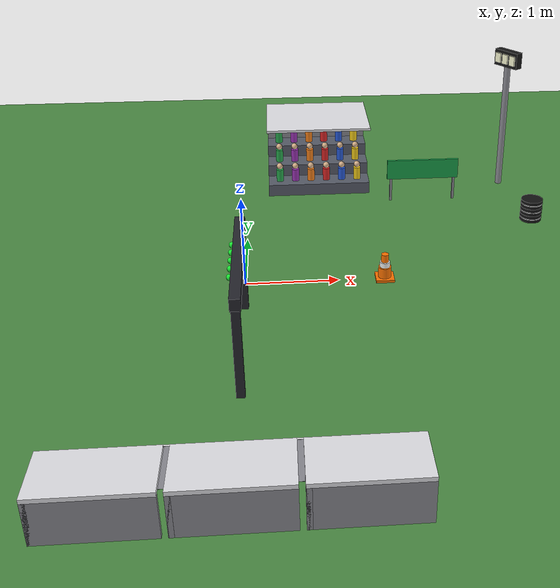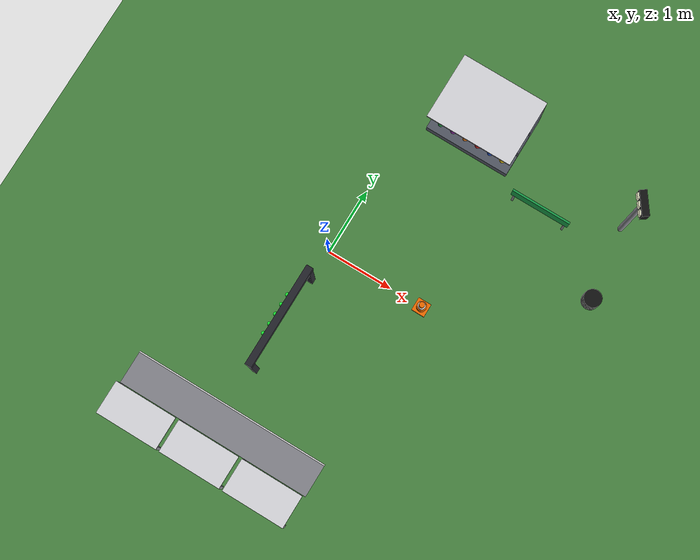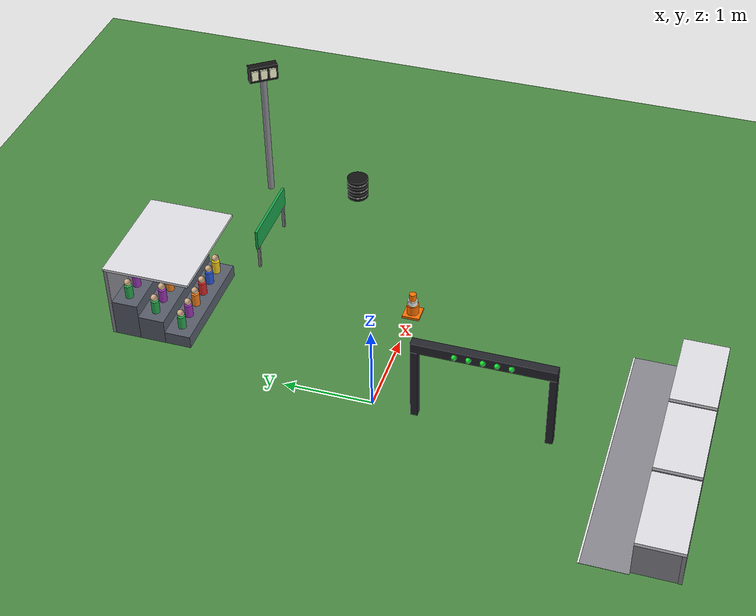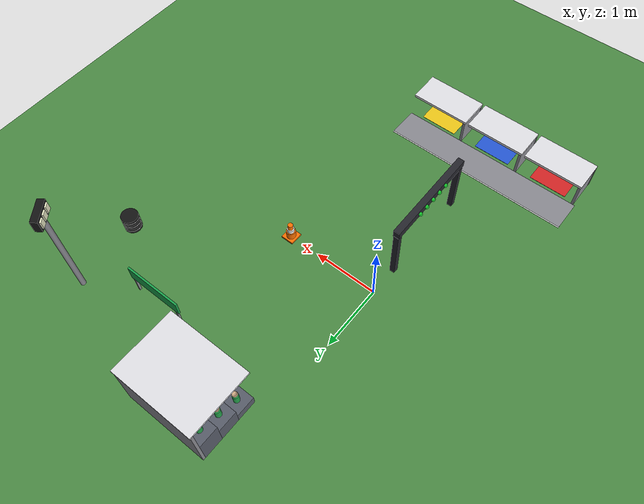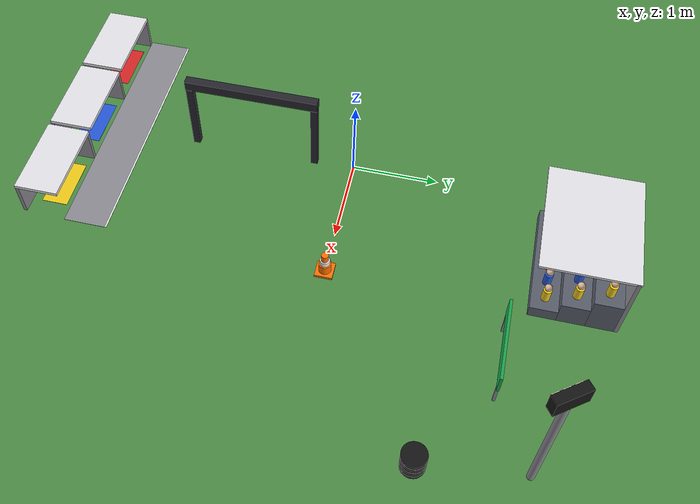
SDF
<sdf version="1.6">
 <world name="apex_circuit">
  <model name="ground_plane">
   <static>true</static>
   <link name="link">
    <collision name="collision">
     <geometry><plane><normal>0 0 1</normal><size>40 40</size></plane></geometry>
     <surface><friction><ode><mu>100</mu><mu2>50</mu2></ode></friction></surface>
    </collision>
    <visual name="visual">
     <geometry><plane><normal>0 0 1</normal><size>40 40</size></plane></geometry>
     <material><ambient>0.3 0.55 0.27 1</ambient><diffuse>0.3 0.55 0.27 1</diffuse></material>
    </visual>
   </link>
  </model>
  <model name="start_finish_gantry">
   <static>true</static>
   <link name="link">
    <visual name="post_out_v">
     <pose>0.0000 -1.9300 0.4500 0 0 0.0000</pose>
     <geometry><box><size>0.0800 0.0800 0.9000</size></box></geometry>
     <material><ambient>0.15 0.15 0.18 1</ambient><diffuse>0.15 0.15 0.18 1</diffuse></material>
    </visual>
    <collision name="post_out_c">
     <pose>0.0000 -1.9300 0.4500 0 0 0.0000</pose>
     <geometry><box><size>0.0800 0.0800 0.9000</size></box></geometry>
    </collision>
    <visual name="post_in_v">
     <pose>0.0000 -0.4700 0.4500 0 0 0.0000</pose>
     <geometry><box><size>0.0800 0.0800 0.9000</size></box></geometry>
     <material><ambient>0.15 0.15 0.18 1</ambient><diffuse>0.15 0.15 0.18 1</diffuse></material>
    </visual>
    <collision name="post_in_c">
     <pose>0.0000 -0.4700 0.4500 0 0 0.0000</pose>
     <geometry><box><size>0.0800 0.0800 0.9000</size></box></geometry>
    </collision>
    <visual name="beam_v">
     <pose>0.0000 -1.2000 0.9600 0 0 0.0000</pose>
     <geometry><box><size>0.1000 1.5400 0.1200</size></box></geometry>
     <material><ambient>0.15 0.15 0.18 1</ambient><diffuse>0.15 0.15 0.18 1</diffuse></material>
    </visual>
    <collision name="beam_c">
     <pose>0.0000 -1.2000 0.9600 0 0 0.0000</pose>
     <geometry><box><size>0.1000 1.5400 0.1200</size></box></geometry>
    </collision>
    <visual name="light_0_v">
     <pose>-0.0600 -1.5000 0.9600 0 0 0.0000</pose>
     <geometry><sphere><radius>0.0300</radius></sphere></geometry>
     <material>
      <ambient>0.1 0.9 0.2 1</ambient>
      <diffuse>0.1 0.9 0.2 1</diffuse>
      <emissive>0.1 0.8 0.2 1</emissive>
     </material>
    </visual>
    <visual name="light_1_v">
     <pose>-0.0600 -1.3500 0.9600 0 0 0.0000</pose>
     <geometry><sphere><radius>0.0300</radius></sphere></geometry>
     <material>
      <ambient>0.1 0.9 0.2 1</ambient>
      <diffuse>0.1 0.9 0.2 1</diffuse>
      <emissive>0.1 0.8 0.2 1</emissive>
     </material>
    </visual>
    <visual name="light_2_v">
     <pose>-0.0600 -1.2000 0.9600 0 0 0.0000</pose>
     <geometry><sphere><radius>0.0300</radius></sphere></geometry>
     <material>
      <ambient>0.1 0.9 0.2 1</ambient>
      <diffuse>0.1 0.9 0.2 1</diffuse>
      <emissive>0.1 0.8 0.2 1</emissive>
     </material>
    </visual>
    <visual name="light_3_v">
     <pose>-0.0600 -1.0500 0.9600 0 0 0.0000</pose>
     <geometry><sphere><radius>0.0300</radius></sphere></geometry>
     <material>
      <ambient>0.1 0.9 0.2 1</ambient>
      <diffuse>0.1 0.9 0.2 1</diffuse>
      <emissive>0.1 0.8 0.2 1</emissive>
     </material>
    </visual>
    <visual name="light_4_v">
     <pose>-0.0600 -0.9000 0.9600 0 0 0.0000</pose>
     <geometry><sphere><radius>0.0300</radius></sphere></geometry>
     <material>
      <ambient>0.1 0.9 0.2 1</ambient>
      <diffuse>0.1 0.9 0.2 1</diffuse>
      <emissive>0.1 0.8 0.2 1</emissive>
     </material>
    </visual>
   </link>
  </model>
  <model name="pit_lane">
   <static>true</static>
   <link name="link">
    <visual name="pit_lane_v">
     <pose>0.0000 -2.8000 0.0020 0 0 0.0000</pose>
     <geometry><box><size>3.0000 0.5000 0.0020</size></box></geometry>
     <material><ambient>0.55 0.55 0.58 1</ambient><diffuse>0.55 0.55 0.58 1</diffuse></material>
    </visual>
    <visual name="pit_line_v">
     <pose>0.0000 -2.5500 0.0040 0 0 0.0000</pose>
     <geometry><box><size>3.0000 0.0200 0.0020</size></box></geometry>
     <material><ambient>0.95 0.95 0.95 1</ambient><diffuse>0.95 0.95 0.95 1</diffuse></material>
    </visual>
    <visual name="garage_0_roof_v">
     <pose>-1.0000 -3.3000 0.4200 0 0 0.0000</pose>
     <geometry><box><size>0.9500 0.5000 0.0400</size></box></geometry>
     <material><ambient>0.9 0.9 0.92 1</ambient><diffuse>0.9 0.9 0.92 1</diffuse></material>
    </visual>
    <collision name="garage_0_roof_c">
     <pose>-1.0000 -3.3000 0.4200 0 0 0.0000</pose>
     <geometry><box><size>0.9500 0.5000 0.0400</size></box></geometry>
    </collision>
    <visual name="garage_0_back_v">
     <pose>-1.0000 -3.5300 0.2000 0 0 0.0000</pose>
     <geometry><box><size>0.9500 0.0400 0.4000</size></box></geometry>
     <material><ambient>0.55 0.55 0.58 1</ambient><diffuse>0.55 0.55 0.58 1</diffuse></material>
    </visual>
    <collision name="garage_0_back_c">
     <pose>-1.0000 -3.5300 0.2000 0 0 0.0000</pose>
     <geometry><box><size>0.9500 0.0400 0.4000</size></box></geometry>
    </collision>
    <visual name="garage_0_side_v">
     <pose>-1.4500 -3.3000 0.2000 0 0 0.0000</pose>
     <geometry><box><size>0.0400 0.5000 0.4000</size></box></geometry>
     <material><ambient>0.55 0.55 0.58 1</ambient><diffuse>0.55 0.55 0.58 1</diffuse></material>
    </visual>
    <collision name="garage_0_side_c">
     <pose>-1.4500 -3.3000 0.2000 0 0 0.0000</pose>
     <geometry><box><size>0.0400 0.5000 0.4000</size></box></geometry>
    </collision>
    <visual name="garage_0_mark_v">
     <pose>-1.0000 -3.2500 0.0040 0 0 0.0000</pose>
     <geometry><box><size>0.6000 0.3000 0.0020</size></box></geometry>
     <material><ambient>0.85 0.15 0.15 1</ambient><diffuse>0.85 0.15 0.15 1</diffuse></material>
    </visual>
    <visual name="garage_1_roof_v">
     <pose>0.0000 -3.3000 0.4200 0 0 0.0000</pose>
     <geometry><box><size>0.9500 0.5000 0.0400</size></box></geometry>
     <material><ambient>0.9 0.9 0.92 1</ambient><diffuse>0.9 0.9 0.92 1</diffuse></material>
    </visual>
    <collision name="garage_1_roof_c">
     <pose>0.0000 -3.3000 0.4200 0 0 0.0000</pose>
     <geometry><box><size>0.9500 0.5000 0.0400</size></box></geometry>
    </collision>
    <visual name="garage_1_back_v">
     <pose>0.0000 -3.5300 0.2000 0 0 0.0000</pose>
     <geometry><box><size>0.9500 0.0400 0.4000</size></box></geometry>
     <material><ambient>0.55 0.55 0.58 1</ambient><diffuse>0.55 0.55 0.58 1</diffuse></material>
    </visual>
    <collision name="garage_1_back_c">
     <pose>0.0000 -3.5300 0.2000 0 0 0.0000</pose>
     <geometry><box><size>0.9500 0.0400 0.4000</size></box></geometry>
    </collision>
    <visual name="garage_1_side_v">
     <pose>-0.4500 -3.3000 0.2000 0 0 0.0000</pose>
     <geometry><box><size>0.0400 0.5000 0.4000</size></box></geometry>
     <material><ambient>0.55 0.55 0.58 1</ambient><diffuse>0.55 0.55 0.58 1</diffuse></material>
    </visual>
    <collision name="garage_1_side_c">
     <pose>-0.4500 -3.3000 0.2000 0 0 0.0000</pose>
     <geometry><box><size>0.0400 0.5000 0.4000</size></box></geometry>
    </collision>
    <visual name="garage_1_mark_v">
     <pose>0.0000 -3.2500 0.0040 0 0 0.0000</pose>
     <geometry><box><size>0.6000 0.3000 0.0020</size></box></geometry>
     <material><ambient>0.15 0.35 0.85 1</ambient><diffuse>0.15 0.35 0.85 1</diffuse></material>
    </visual>
    <visual name="garage_2_roof_v">
     <pose>1.0000 -3.3000 0.4200 0 0 0.0000</pose>
     <geometry><box><size>0.9500 0.5000 0.0400</size></box></geometry>
     <material><ambient>0.9 0.9 0.92 1</ambient><diffuse>0.9 0.9 0.92 1</diffuse></material>
    </visual>
    <collision name="garage_2_roof_c">
     <pose>1.0000 -3.3000 0.4200 0 0 0.0000</pose>
     <geometry><box><size>0.9500 0.5000 0.0400</size></box></geometry>
    </collision>
    <visual name="garage_2_back_v">
     <pose>1.0000 -3.5300 0.2000 0 0 0.0000</pose>
     <geometry><box><size>0.9500 0.0400 0.4000</size></box></geometry>
     <material><ambient>0.55 0.55 0.58 1</ambient><diffuse>0.55 0.55 0.58 1</diffuse></material>
    </visual>
    <collision name="garage_2_back_c">
     <pose>1.0000 -3.5300 0.2000 0 0 0.0000</pose>
     <geometry><box><size>0.9500 0.0400 0.4000</size></box></geometry>
    </collision>
    <visual name="garage_2_side_v">
     <pose>0.5500 -3.3000 0.2000 0 0 0.0000</pose>
     <geometry><box><size>0.0400 0.5000 0.4000</size></box></geometry>
     <material><ambient>0.55 0.55 0.58 1</ambient><diffuse>0.55 0.55 0.58 1</diffuse></material>
    </visual>
    <collision name="garage_2_side_c">
     <pose>0.5500 -3.3000 0.2000 0 0 0.0000</pose>
     <geometry><box><size>0.0400 0.5000 0.4000</size></box></geometry>
    </collision>
    <visual name="garage_2_mark_v">
     <pose>1.0000 -3.2500 0.0040 0 0 0.0000</pose>
     <geometry><box><size>0.6000 0.3000 0.0020</size></box></geometry>
     <material><ambient>0.95 0.8 0.1 1</ambient><diffuse>0.95 0.8 0.1 1</diffuse></material>
    </visual>
   </link>
  </model>
  <model name="light_tower">
   <static>true</static>
   <pose>3.3000 2.4000 0 0 0 -0.9420</pose>
   <link name="link">
    <visual name="pole_v">
     <pose>0.0000 0.0000 0.8000 0 0 0.0000</pose>
     <geometry><cylinder><radius>0.0400</radius><length>1.6000</length></cylinder></geometry>
     <material><ambient>0.55 0.55 0.58 1</ambient><diffuse>0.55 0.55 0.58 1</diffuse></material>
    </visual>
    <collision name="pole_c">
     <pose>0.0000 0.0000 0.8000 0 0 0.0000</pose>
     <geometry><cylinder><radius>0.0400</radius><length>1.6000</length></cylinder></geometry>
    </collision>
    <visual name="head_v">
     <pose>0.0000 0.0000 1.7000 0 0 0.0000</pose>
     <geometry><box><size>0.3500 0.1000 0.2000</size></box></geometry>
     <material><ambient>0.08 0.08 0.08 1</ambient><diffuse>0.08 0.08 0.08 1</diffuse></material>
    </visual>
    <collision name="head_c">
     <pose>0.0000 0.0000 1.7000 0 0 0.0000</pose>
     <geometry><box><size>0.3500 0.1000 0.2000</size></box></geometry>
    </collision>
    <visual name="lamp_0_v">
     <pose>-0.1100 -0.0600 1.7000 0 0 0.0000</pose>
     <geometry><box><size>0.0800 0.0200 0.1200</size></box></geometry>
     <material><ambient>1 1 0.85 1</ambient><diffuse>1 1 0.85 1</diffuse><emissive>1 1 0.8 1</emissive></material>
    </visual>
    <visual name="lamp_1_v">
     <pose>0.0000 -0.0600 1.7000 0 0 0.0000</pose>
     <geometry><box><size>0.0800 0.0200 0.1200</size></box></geometry>
     <material><ambient>1 1 0.85 1</ambient><diffuse>1 1 0.85 1</diffuse><emissive>1 1 0.8 1</emissive></material>
    </visual>
    <visual name="lamp_2_v">
     <pose>0.1100 -0.0600 1.7000 0 0 0.0000</pose>
     <geometry><box><size>0.0800 0.0200 0.1200</size></box></geometry>
     <material><ambient>1 1 0.85 1</ambient><diffuse>1 1 0.85 1</diffuse><emissive>1 1 0.8 1</emissive></material>
    </visual>
   </link>
  </model>
  <model name="grandstand_1">
   <static>true</static>
   <pose>0.9000 0.0000 0 0 0 0.0000</pose>
   <link name="link">
    <visual name="row_0_v">
     <pose>0.0000 2.3500 0.0750 0 0 0.0000</pose>
     <geometry><box><size>1.3000 0.3000 0.1500</size></box></geometry>
     <material><ambient>0.35 0.37 0.42 1</ambient><diffuse>0.35 0.37 0.42 1</diffuse></material>
    </visual>
    <collision name="row_0_c">
     <pose>0.0000 2.3500 0.0750 0 0 0.0000</pose>
     <geometry><box><size>1.3000 0.3000 0.1500</size></box></geometry>
    </collision>
    <visual name="fan_0_0_body_v">
     <pose>-0.5000 2.3500 0.2300 0 0 0.0000</pose>
     <geometry><cylinder><radius>0.0450</radius><length>0.1600</length></cylinder></geometry>
     <material><ambient>0.15 0.65 0.3 1</ambient><diffuse>0.15 0.65 0.3 1</diffuse></material>
    </visual>
    <visual name="fan_0_0_head_v">
     <pose>-0.5000 2.3500 0.3500 0 0 0.0000</pose>
     <geometry><sphere><radius>0.0400</radius></sphere></geometry>
     <material><ambient>0.85 0.7 0.55 1</ambient><diffuse>0.85 0.7 0.55 1</diffuse></material>
    </visual>
    <visual name="fan_0_1_body_v">
     <pose>-0.3000 2.3500 0.2300 0 0 0.0000</pose>
     <geometry><cylinder><radius>0.0450</radius><length>0.1600</length></cylinder></geometry>
     <material><ambient>0.6 0.2 0.7 1</ambient><diffuse>0.6 0.2 0.7 1</diffuse></material>
    </visual>
    <visual name="fan_0_1_head_v">
     <pose>-0.3000 2.3500 0.3500 0 0 0.0000</pose>
     <geometry><sphere><radius>0.0400</radius></sphere></geometry>
     <material><ambient>0.85 0.7 0.55 1</ambient><diffuse>0.85 0.7 0.55 1</diffuse></material>
    </visual>
    <visual name="fan_0_2_body_v">
     <pose>-0.1000 2.3500 0.2300 0 0 0.0000</pose>
     <geometry><cylinder><radius>0.0450</radius><length>0.1600</length></cylinder></geometry>
     <material><ambient>0.95 0.5 0.1 1</ambient><diffuse>0.95 0.5 0.1 1</diffuse></material>
    </visual>
    <visual name="fan_0_2_head_v">
     <pose>-0.1000 2.3500 0.3500 0 0 0.0000</pose>
     <geometry><sphere><radius>0.0400</radius></sphere></geometry>
     <material><ambient>0.85 0.7 0.55 1</ambient><diffuse>0.85 0.7 0.55 1</diffuse></material>
    </visual>
    <visual name="fan_0_3_body_v">
     <pose>0.1000 2.3500 0.2300 0 0 0.0000</pose>
     <geometry><cylinder><radius>0.0450</radius><length>0.1600</length></cylinder></geometry>
     <material><ambient>0.85 0.15 0.15 1</ambient><diffuse>0.85 0.15 0.15 1</diffuse></material>
    </visual>
    <visual name="fan_0_3_head_v">
     <pose>0.1000 2.3500 0.3500 0 0 0.0000</pose>
     <geometry><sphere><radius>0.0400</radius></sphere></geometry>
     <material><ambient>0.85 0.7 0.55 1</ambient><diffuse>0.85 0.7 0.55 1</diffuse></material>
    </visual>
    <visual name="fan_0_4_body_v">
     <pose>0.3000 2.3500 0.2300 0 0 0.0000</pose>
     <geometry><cylinder><radius>0.0450</radius><length>0.1600</length></cylinder></geometry>
     <material><ambient>0.15 0.35 0.85 1</ambient><diffuse>0.15 0.35 0.85 1</diffuse></material>
    </visual>
    <visual name="fan_0_4_head_v">
     <pose>0.3000 2.3500 0.3500 0 0 0.0000</pose>
     <geometry><sphere><radius>0.0400</radius></sphere></geometry>
     <material><ambient>0.85 0.7 0.55 1</ambient><diffuse>0.85 0.7 0.55 1</diffuse></material>
    </visual>
    <visual name="fan_0_5_body_v">
     <pose>0.5000 2.3500 0.2300 0 0 0.0000</pose>
     <geometry><cylinder><radius>0.0450</radius><length>0.1600</length></cylinder></geometry>
     <material><ambient>0.95 0.8 0.1 1</ambient><diffuse>0.95 0.8 0.1 1</diffuse></material>
    </visual>
    <visual name="fan_0_5_head_v">
     <pose>0.5000 2.3500 0.3500 0 0 0.0000</pose>
     <geometry><sphere><radius>0.0400</radius></sphere></geometry>
     <material><ambient>0.85 0.7 0.55 1</ambient><diffuse>0.85 0.7 0.55 1</diffuse></material>
    </visual>
    <visual name="row_1_v">
     <pose>0.0000 2.6500 0.1500 0 0 0.0000</pose>
     <geometry><box><size>1.3000 0.3000 0.3000</size></box></geometry>
     <material><ambient>0.35 0.37 0.42 1</ambient><diffuse>0.35 0.37 0.42 1</diffuse></material>
    </visual>
    <collision name="row_1_c">
     <pose>0.0000 2.6500 0.1500 0 0 0.0000</pose>
     <geometry><box><size>1.3000 0.3000 0.3000</size></box></geometry>
    </collision>
    <visual name="fan_1_0_body_v">
     <pose>-0.5000 2.6500 0.3800 0 0 0.0000</pose>
     <geometry><cylinder><radius>0.0450</radius><length>0.1600</length></cylinder></geometry>
     <material><ambient>0.15 0.65 0.3 1</ambient><diffuse>0.15 0.65 0.3 1</diffuse></material>
    </visual>
    <visual name="fan_1_0_head_v">
     <pose>-0.5000 2.6500 0.5000 0 0 0.0000</pose>
     <geometry><sphere><radius>0.0400</radius></sphere></geometry>
     <material><ambient>0.85 0.7 0.55 1</ambient><diffuse>0.85 0.7 0.55 1</diffuse></material>
    </visual>
    <visual name="fan_1_1_body_v">
     <pose>-0.3000 2.6500 0.3800 0 0 0.0000</pose>
     <geometry><cylinder><radius>0.0450</radius><length>0.1600</length></cylinder></geometry>
     <material><ambient>0.6 0.2 0.7 1</ambient><diffuse>0.6 0.2 0.7 1</diffuse></material>
    </visual>
    <visual name="fan_1_1_head_v">
     <pose>-0.3000 2.6500 0.5000 0 0 0.0000</pose>
     <geometry><sphere><radius>0.0400</radius></sphere></geometry>
     <material><ambient>0.85 0.7 0.55 1</ambient><diffuse>0.85 0.7 0.55 1</diffuse></material>
    </visual>
    <visual name="fan_1_2_body_v">
     <pose>-0.1000 2.6500 0.3800 0 0 0.0000</pose>
     <geometry><cylinder><radius>0.0450</radius><length>0.1600</length></cylinder></geometry>
     <material><ambient>0.95 0.5 0.1 1</ambient><diffuse>0.95 0.5 0.1 1</diffuse></material>
    </visual>
    <visual name="fan_1_2_head_v">
     <pose>-0.1000 2.6500 0.5000 0 0 0.0000</pose>
     <geometry><sphere><radius>0.0400</radius></sphere></geometry>
     <material><ambient>0.85 0.7 0.55 1</ambient><diffuse>0.85 0.7 0.55 1</diffuse></material>
    </visual>
    <visual name="fan_1_3_body_v">
     <pose>0.1000 2.6500 0.3800 0 0 0.0000</pose>
     <geometry><cylinder><radius>0.0450</radius><length>0.1600</length></cylinder></geometry>
     <material><ambient>0.85 0.15 0.15 1</ambient><diffuse>0.85 0.15 0.15 1</diffuse></material>
    </visual>
    <visual name="fan_1_3_head_v">
     <pose>0.1000 2.6500 0.5000 0 0 0.0000</pose>
     <geometry><sphere><radius>0.0400</radius></sphere></geometry>
     <material><ambient>0.85 0.7 0.55 1</ambient><diffuse>0.85 0.7 0.55 1</diffuse></material>
    </visual>
    <visual name="fan_1_4_body_v">
     <pose>0.3000 2.6500 0.3800 0 0 0.0000</pose>
     <geometry><cylinder><radius>0.0450</radius><length>0.1600</length></cylinder></geometry>
     <material><ambient>0.15 0.35 0.85 1</ambient><diffuse>0.15 0.35 0.85 1</diffuse></material>
    </visual>
    <visual name="fan_1_4_head_v">
     <pose>0.3000 2.6500 0.5000 0 0 0.0000</pose>
     <geometry><sphere><radius>0.0400</radius></sphere></geometry>
     <material><ambient>0.85 0.7 0.55 1</ambient><diffuse>0.85 0.7 0.55 1</diffuse></material>
    </visual>
    <visual name="fan_1_5_body_v">
     <pose>0.5000 2.6500 0.3800 0 0 0.0000</pose>
     <geometry><cylinder><radius>0.0450</radius><length>0.1600</length></cylinder></geometry>
     <material><ambient>0.95 0.8 0.1 1</ambient><diffuse>0.95 0.8 0.1 1</diffuse></material>
    </visual>
    <visual name="fan_1_5_head_v">
     <pose>0.5000 2.6500 0.5000 0 0 0.0000</pose>
     <geometry><sphere><radius>0.0400</radius></sphere></geometry>
     <material><ambient>0.85 0.7 0.55 1</ambient><diffuse>0.85 0.7 0.55 1</diffuse></material>
    </visual>
    <visual name="row_2_v">
     <pose>0.0000 2.9500 0.2250 0 0 0.0000</pose>
     <geometry><box><size>1.3000 0.3000 0.4500</size></box></geometry>
     <material><ambient>0.35 0.37 0.42 1</ambient><diffuse>0.35 0.37 0.42 1</diffuse></material>
    </visual>
    <collision name="row_2_c">
     <pose>0.0000 2.9500 0.2250 0 0 0.0000</pose>
     <geometry><box><size>1.3000 0.3000 0.4500</size></box></geometry>
    </collision>
    <visual name="fan_2_0_body_v">
     <pose>-0.5000 2.9500 0.5300 0 0 0.0000</pose>
     <geometry><cylinder><radius>0.0450</radius><length>0.1600</length></cylinder></geometry>
     <material><ambient>0.15 0.65 0.3 1</ambient><diffuse>0.15 0.65 0.3 1</diffuse></material>
    </visual>
    <visual name="fan_2_0_head_v">
     <pose>-0.5000 2.9500 0.6500 0 0 0.0000</pose>
     <geometry><sphere><radius>0.0400</radius></sphere></geometry>
     <material><ambient>0.85 0.7 0.55 1</ambient><diffuse>0.85 0.7 0.55 1</diffuse></material>
    </visual>
    <visual name="fan_2_1_body_v">
     <pose>-0.3000 2.9500 0.5300 0 0 0.0000</pose>
     <geometry><cylinder><radius>0.0450</radius><length>0.1600</length></cylinder></geometry>
     <material><ambient>0.6 0.2 0.7 1</ambient><diffuse>0.6 0.2 0.7 1</diffuse></material>
    </visual>
    <visual name="fan_2_1_head_v">
     <pose>-0.3000 2.9500 0.6500 0 0 0.0000</pose>
     <geometry><sphere><radius>0.0400</radius></sphere></geometry>
     <material><ambient>0.85 0.7 0.55 1</ambient><diffuse>0.85 0.7 0.55 1</diffuse></material>
    </visual>
    <visual name="fan_2_2_body_v">
     <pose>-0.1000 2.9500 0.5300 0 0 0.0000</pose>
     <geometry><cylinder><radius>0.0450</radius><length>0.1600</length></cylinder></geometry>
     <material><ambient>0.95 0.5 0.1 1</ambient><diffuse>0.95 0.5 0.1 1</diffuse></material>
    </visual>
    <visual name="fan_2_2_head_v">
     <pose>-0.1000 2.9500 0.6500 0 0 0.0000</pose>
     <geometry><sphere><radius>0.0400</radius></sphere></geometry>
     <material><ambient>0.85 0.7 0.55 1</ambient><diffuse>0.85 0.7 0.55 1</diffuse></material>
    </visual>
    <visual name="fan_2_3_body_v">
     <pose>0.1000 2.9500 0.5300 0 0 0.0000</pose>
     <geometry><cylinder><radius>0.0450</radius><length>0.1600</length></cylinder></geometry>
     <material><ambient>0.85 0.15 0.15 1</ambient><diffuse>0.85 0.15 0.15 1</diffuse></material>
    </visual>
    <visual name="fan_2_3_head_v">
     <pose>0.1000 2.9500 0.6500 0 0 0.0000</pose>
     <geometry><sphere><radius>0.0400</radius></sphere></geometry>
     <material><ambient>0.85 0.7 0.55 1</ambient><diffuse>0.85 0.7 0.55 1</diffuse></material>
    </visual>
    <visual name="fan_2_4_body_v">
     <pose>0.3000 2.9500 0.5300 0 0 0.0000</pose>
     <geometry><cylinder><radius>0.0450</radius><length>0.1600</length></cylinder></geometry>
     <material><ambient>0.15 0.35 0.85 1</ambient><diffuse>0.15 0.35 0.85 1</diffuse></material>
    </visual>
    <visual name="fan_2_4_head_v">
     <pose>0.3000 2.9500 0.6500 0 0 0.0000</pose>
     <geometry><sphere><radius>0.0400</radius></sphere></geometry>
     <material><ambient>0.85 0.7 0.55 1</ambient><diffuse>0.85 0.7 0.55 1</diffuse></material>
    </visual>
    <visual name="fan_2_5_body_v">
     <pose>0.5000 2.9500 0.5300 0 0 0.0000</pose>
     <geometry><cylinder><radius>0.0450</radius><length>0.1600</length></cylinder></geometry>
     <material><ambient>0.95 0.8 0.1 1</ambient><diffuse>0.95 0.8 0.1 1</diffuse></material>
    </visual>
    <visual name="fan_2_5_head_v">
     <pose>0.5000 2.9500 0.6500 0 0 0.0000</pose>
     <geometry><sphere><radius>0.0400</radius></sphere></geometry>
     <material><ambient>0.85 0.7 0.55 1</ambient><diffuse>0.85 0.7 0.55 1</diffuse></material>
    </visual>
    <visual name="back_v">
     <pose>0.0000 3.1200 0.4500 0 0 0.0000</pose>
     <geometry><box><size>1.3000 0.0400 0.9000</size></box></geometry>
     <material><ambient>0.55 0.55 0.58 1</ambient><diffuse>0.55 0.55 0.58 1</diffuse></material>
    </visual>
    <collision name="back_c">
     <pose>0.0000 3.1200 0.4500 0 0 0.0000</pose>
     <geometry><box><size>1.3000 0.0400 0.9000</size></box></geometry>
    </collision>
    <visual name="roof_v">
     <pose>0.0000 2.6500 0.9000 0 0 0.0000</pose>
     <geometry><box><size>1.3000 1.0000 0.0300</size></box></geometry>
     <material><ambient>0.9 0.9 0.92 1</ambient><diffuse>0.9 0.9 0.92 1</diffuse></material>
    </visual>
    <collision name="roof_c">
     <pose>0.0000 2.6500 0.9000 0 0 0.0000</pose>
     <geometry><box><size>1.3000 1.0000 0.0300</size></box></geometry>
    </collision>
   </link>
  </model>
  <model name="banner_3">
   <static>true</static>
   <pose>2.2000 1.9700 0 0 0 0.0000</pose>
   <link name="link">
    <visual name="board_v">
     <pose>0.0000 0.0000 0.4200 0 0 0.0000</pose>
     <geometry><box><size>0.9000 0.0300 0.2500</size></box></geometry>
     <material><ambient>0.1 0.65 0.3 1</ambient><diffuse>0.1 0.65 0.3 1</diffuse></material>
    </visual>
    <collision name="board_c">
     <pose>0.0000 0.0000 0.4200 0 0 0.0000</pose>
     <geometry><box><size>0.9000 0.0300 0.2500</size></box></geometry>
    </collision>
    <visual name="leg_a_v">
     <pose>-0.4000 0.0000 0.1500 0 0 0.0000</pose>
     <geometry><box><size>0.0300 0.0300 0.3000</size></box></geometry>
     <material><ambient>0.55 0.55 0.58 1</ambient><diffuse>0.55 0.55 0.58 1</diffuse></material>
    </visual>
    <collision name="leg_a_c">
     <pose>-0.4000 0.0000 0.1500 0 0 0.0000</pose>
     <geometry><box><size>0.0300 0.0300 0.3000</size></box></geometry>
    </collision>
    <visual name="leg_b_v">
     <pose>0.4000 0.0000 0.1500 0 0 0.0000</pose>
     <geometry><box><size>0.0300 0.0300 0.3000</size></box></geometry>
     <material><ambient>0.55 0.55 0.58 1</ambient><diffuse>0.55 0.55 0.58 1</diffuse></material>
    </visual>
    <collision name="leg_b_c">
     <pose>0.4000 0.0000 0.1500 0 0 0.0000</pose>
     <geometry><box><size>0.0300 0.0300 0.3000</size></box></geometry>
    </collision>
   </link>
  </model>
  <model name="cone_1">
   <static>true</static>
   <pose>1.5000 0.0000 0 0 0 0.0000</pose>
   <link name="link">
    <visual name="cone1_base_v">
     <pose>0.0000 0.0000 0.0150 0 0 0.0000</pose>
     <geometry><box><size>0.2000 0.2000 0.0300</size></box></geometry>
     <material><ambient>1.0 0.45 0.0 1</ambient><diffuse>1.0 0.45 0.0 1</diffuse></material>
    </visual>
    <collision name="cone1_base_c">
     <pose>0.0000 0.0000 0.0150 0 0 0.0000</pose>
     <geometry><box><size>0.2000 0.2000 0.0300</size></box></geometry>
    </collision>
    <visual name="cone1_low_v">
     <pose>0.0000 0.0000 0.0900 0 0 0.0000</pose>
     <geometry><cylinder><radius>0.0700</radius><length>0.1200</length></cylinder></geometry>
     <material><ambient>1.0 0.45 0.0 1</ambient><diffuse>1.0 0.45 0.0 1</diffuse></material>
    </visual>
    <collision name="cone1_low_c">
     <pose>0.0000 0.0000 0.0900 0 0 0.0000</pose>
     <geometry><cylinder><radius>0.0700</radius><length>0.1200</length></cylinder></geometry>
    </collision>
    <visual name="cone1_band_v">
     <pose>0.0000 0.0000 0.1800 0 0 0.0000</pose>
     <geometry><cylinder><radius>0.0550</radius><length>0.0600</length></cylinder></geometry>
     <material><ambient>0.95 0.95 0.95 1</ambient><diffuse>0.95 0.95 0.95 1</diffuse></material>
    </visual>
    <collision name="cone1_band_c">
     <pose>0.0000 0.0000 0.1800 0 0 0.0000</pose>
     <geometry><cylinder><radius>0.0550</radius><length>0.0600</length></cylinder></geometry>
    </collision>
    <visual name="cone1_top_v">
     <pose>0.0000 0.0000 0.2550 0 0 0.0000</pose>
     <geometry><cylinder><radius>0.0400</radius><length>0.0900</length></cylinder></geometry>
     <material><ambient>1.0 0.45 0.0 1</ambient><diffuse>1.0 0.45 0.0 1</diffuse></material>
    </visual>
    <collision name="cone1_top_c">
     <pose>0.0000 0.0000 0.2550 0 0 0.0000</pose>
     <geometry><cylinder><radius>0.0400</radius><length>0.0900</length></cylinder></geometry>
    </collision>
   </link>
  </model>
  <model name="tyre_stack_3">
   <static>true</static>
   <pose>3.4500 1.3000 0 0 0 0.0000</pose>
   <link name="link">
    <visual name="ts3_t0_v">
     <pose>0.0000 0.0000 0.0450 0 0 0.0000</pose>
     <geometry><cylinder><radius>0.1300</radius><length>0.0900</length></cylinder></geometry>
     <material><ambient>0.08 0.08 0.08 1</ambient><diffuse>0.08 0.08 0.08 1</diffuse></material>
    </visual>
    <collision name="ts3_t0_c">
     <pose>0.0000 0.0000 0.0450 0 0 0.0000</pose>
     <geometry><cylinder><radius>0.1300</radius><length>0.0900</length></cylinder></geometry>
    </collision>
    <visual name="ts3_s0_v">
     <pose>0.0000 0.0000 0.0450 0 0 0.0000</pose>
     <geometry><cylinder><radius>0.1310</radius><length>0.0120</length></cylinder></geometry>
     <material><ambient>0.95 0.95 0.95 1</ambient><diffuse>0.95 0.95 0.95 1</diffuse></material>
    </visual>
    <visual name="ts3_t1_v">
     <pose>0.0000 0.0000 0.1350 0 0 0.0000</pose>
     <geometry><cylinder><radius>0.1300</radius><length>0.0900</length></cylinder></geometry>
     <material><ambient>0.08 0.08 0.08 1</ambient><diffuse>0.08 0.08 0.08 1</diffuse></material>
    </visual>
    <collision name="ts3_t1_c">
     <pose>0.0000 0.0000 0.1350 0 0 0.0000</pose>
     <geometry><cylinder><radius>0.1300</radius><length>0.0900</length></cylinder></geometry>
    </collision>
    <visual name="ts3_s1_v">
     <pose>0.0000 0.0000 0.1350 0 0 0.0000</pose>
     <geometry><cylinder><radius>0.1310</radius><length>0.0120</length></cylinder></geometry>
     <material><ambient>0.95 0.95 0.95 1</ambient><diffuse>0.95 0.95 0.95 1</diffuse></material>
    </visual>
    <visual name="ts3_t2_v">
     <pose>0.0000 0.0000 0.2250 0 0 0.0000</pose>
     <geometry><cylinder><radius>0.1300</radius><length>0.0900</length></cylinder></geometry>
     <material><ambient>0.08 0.08 0.08 1</ambient><diffuse>0.08 0.08 0.08 1</diffuse></material>
    </visual>
    <collision name="ts3_t2_c">
     <pose>0.0000 0.0000 0.2250 0 0 0.0000</pose>
     <geometry><cylinder><radius>0.1300</radius><length>0.0900</length></cylinder></geometry>
    </collision>
    <visual name="ts3_s2_v">
     <pose>0.0000 0.0000 0.2250 0 0 0.0000</pose>
     <geometry><cylinder><radius>0.1310</radius><length>0.0120</length></cylinder></geometry>
     <material><ambient>0.95 0.95 0.95 1</ambient><diffuse>0.95 0.95 0.95 1</diffuse></material>
    </visual>
   </link>
  </model>
 </world>
</sdf>
